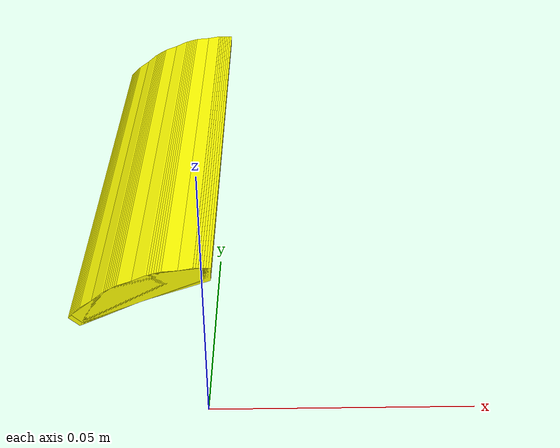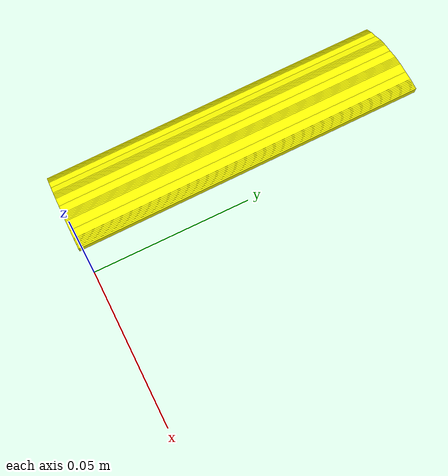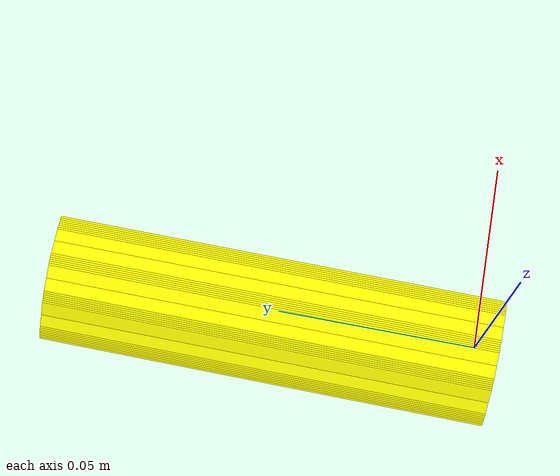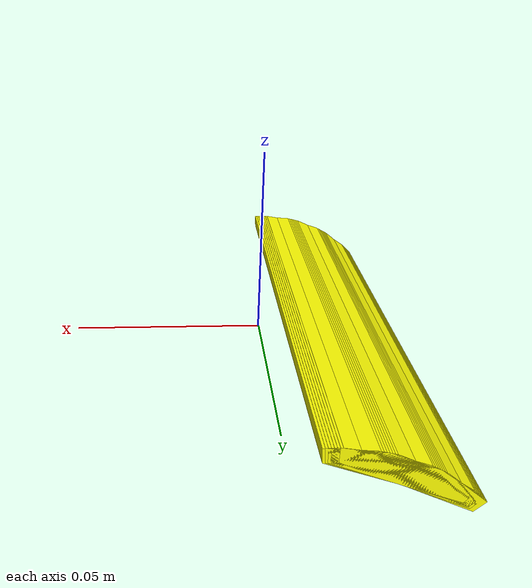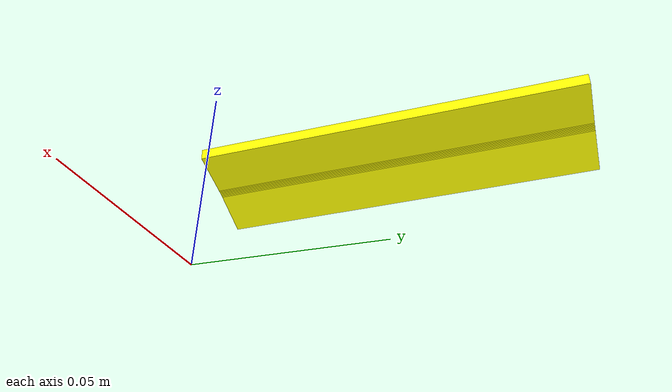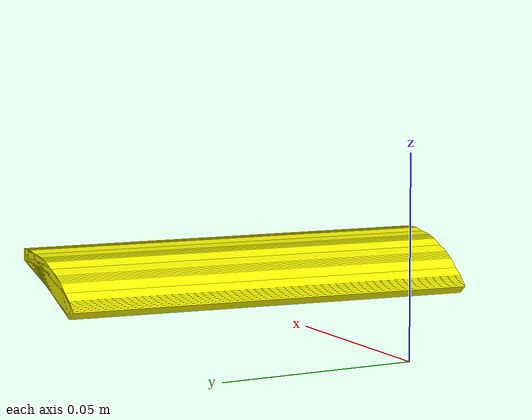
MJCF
<mujoco model="cup1">
    <asset>
      <mesh name="cup1_mesh" file="assets/cup.stl" scale="1.3 2 1.3" />
    </asset>

      <worldbody>
        <body name="cup1">
          <geom type="mesh" mesh="cup1_mesh" pos="0 0 0" euler='1.57 -2.35619 0' rgba="1.0 1.0 0.0 1.0"/>
          <geom type="mesh" mesh="cup1_mesh" pos="0 0 0" euler='1.57 -1.57079 0' rgba="1.0 1.0 0.0 1.0"/>
          <geom type="mesh" mesh="cup1_mesh" pos="0 0 0" euler='1.57 -0.78539 0' rgba="1.0 1.0 0.0 1.0"/>
          <geom type="mesh" mesh="cup1_mesh" pos="0 0 0" euler='1.57 0 0' rgba="1.0 1.0 0.0 1.0"/>
          <geom type="mesh" mesh="cup1_mesh" pos="0 0 0" euler='1.57 0.78539 0' rgba="1.0 1.0 0.0 1.0"/>
          <geom type="mesh" mesh="cup1_mesh" pos="0 0 0" euler='1.57 1.57079 0' rgba="1.0 1.0 0.0 1.0"/>
          <geom type="mesh" mesh="cup1_mesh" pos="0 0 0" euler='1.57 2.35619 0' rgba="1.0 1.0 0.0 1.0"/>
          <geom type="mesh" mesh="cup1_mesh" pos="0 0 0" euler='1.57 3.14159 0' rgba="1.0 1.0 0.0 1.0"/>
          <joint name="cup1_joint" type="free"/>
        </body>
      </worldbody>

  </mujoco>
